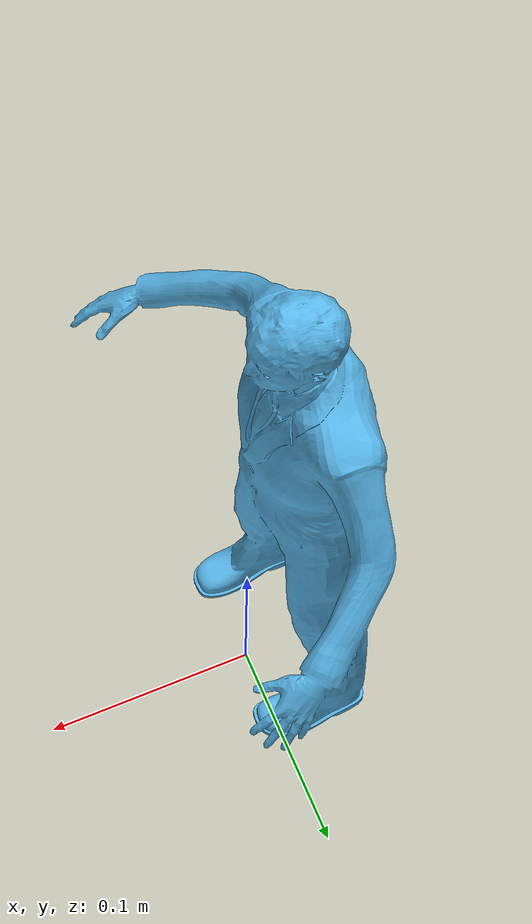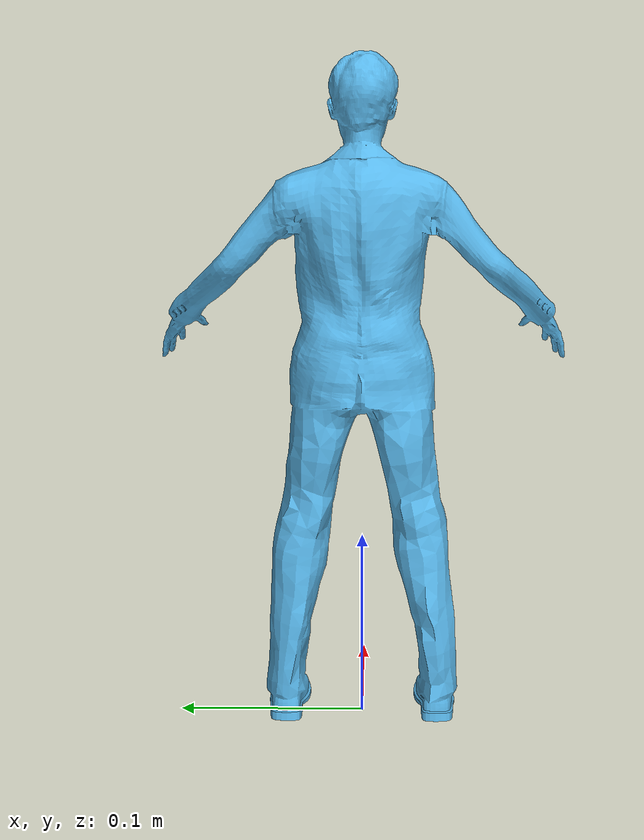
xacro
<?xml version="1.0" ?>
<robot name="turtlebot3_burger" xmlns:xacro="http://ros.org/wiki/xacro">
  <xacro:include filename="$(find turtlebot3_description)/urdf/common_properties.xacro"/>
  <xacro:include filename="$(find turtlebot3_description)/urdf/turtlebot3_burger.gazebo.xacro"/>

  <link name="base_footprint"/>

  <joint name="base_joint" type="fixed">
    <parent link="base_footprint"/>
    <child link="base_link"/>
    <origin xyz="0.0 0.0 0.010" rpy="0 0 0"/>
  </joint>

  <link name="base_link">
    <visual>
      <origin xyz="-.032 0 0.0" rpy="0 0 1.57"/>
      <geometry>
        <mesh filename="package://turtlebot3_object_tracker/meshes/Human.001.stl" scale="0.2 0.2 0.2"/>
      </geometry>
    </visual>

    <collision>
      <origin xyz="-0.032 0 0.070" rpy="0 0 0"/>
      <geometry>
        <box size="0.140 0.140 0.143"/>
      </geometry>
    </collision>

    <inertial>
      <origin xyz="0 0 0" rpy="0 0 0"/>
      <mass value="8.2573504e-01"/>
      <inertia ixx="2.2124416e-03" ixy="-1.2294101e-05" ixz="3.4938785e-05"
               iyy="2.1193702e-03" iyz="-5.0120904e-06"
               izz="2.0064271e-03" />
    </inertial>
  </link>

  <joint name="wheel_left_joint" type="continuous">
    <parent link="base_link"/>
    <child link="wheel_left_link"/>
    <origin xyz="0.0 0.08 0.023" rpy="-1.57 0 0"/>
    <axis xyz="0 0 1"/>
  </joint>

  <link name="wheel_left_link">
    <collision>
      <origin xyz="0 0 0" rpy="0 0 0"/>
      <geometry>
        <cylinder length="0.018" radius="0.033"/>
      </geometry>
    </collision>

    <inertial>
      <origin xyz="0 0 0" />
      <mass value="2.8498940e-02" />
      <inertia ixx="1.1175580e-05" ixy="-4.2369783e-11" ixz="-5.9381719e-09"
               iyy="1.1192413e-05" iyz="-1.4400107e-11"
               izz="2.0712558e-05" />
      </inertial>
  </link>

  <joint name="wheel_right_joint" type="continuous">
    <parent link="base_link"/>
    <child link="wheel_right_link"/>
    <origin xyz="0.0 -0.080 0.023" rpy="-1.57 0 0"/>
    <axis xyz="0 0 1"/>
  </joint>

  <link name="wheel_right_link">
    <collision>
      <origin xyz="0 0 0" rpy="0 0 0"/>
      <geometry>
        <cylinder length="0.018" radius="0.033"/>
      </geometry>
    </collision>

    <inertial>
      <origin xyz="0 0 0" />
      <mass value="2.8498940e-02" />
      <inertia ixx="1.1175580e-05" ixy="-4.2369783e-11" ixz="-5.9381719e-09"
               iyy="1.1192413e-05" iyz="-1.4400107e-11"
               izz="2.0712558e-05" />
      </inertial>
  </link>

  <joint name="caster_back_joint" type="fixed">
    <parent link="base_link"/>
    <child link="caster_back_link"/>
    <origin xyz="-0.081 0 -0.004" rpy="-1.57 0 0"/>
  </joint>

  <link name="caster_back_link">
    <collision>
      <origin xyz="0 0.001 0" rpy="0 0 0"/>
      <geometry>
        <box size="0.030 0.009 0.020"/>
      </geometry>
    </collision>

    <inertial>
      <origin xyz="0 0 0" />
      <mass value="0.005" />
      <inertia ixx="0.001" ixy="0.0" ixz="0.0"
               iyy="0.001" iyz="0.0"
               izz="0.001" />
    </inertial>
  </link>

  <joint name="imu_joint" type="fixed">
    <parent link="base_link"/>
    <child link="imu_link"/>
    <origin xyz="-0.032 0 0.068" rpy="0 0 0"/>
  </joint>

  <link name="imu_link"/>

  <joint name="scan_joint" type="fixed">
    <parent link="base_link"/>
    <child link="base_scan"/>
    <origin xyz="-0.032 0 0.172" rpy="0 0 0"/>
  </joint>

  <link name="base_scan">
    <collision>
      <origin xyz="0.015 0 -0.0065" rpy="0 0 0"/>
      <geometry>
        <cylinder length="0.0315" radius="0.055"/>
      </geometry>
    </collision>

    <inertial>
      <mass value="0.114" />
      <origin xyz="0 0 0" />
      <inertia ixx="0.001" ixy="0.0" ixz="0.0"
               iyy="0.001" iyz="0.0"
               izz="0.001" />
    </inertial>
  </link>

</robot>
